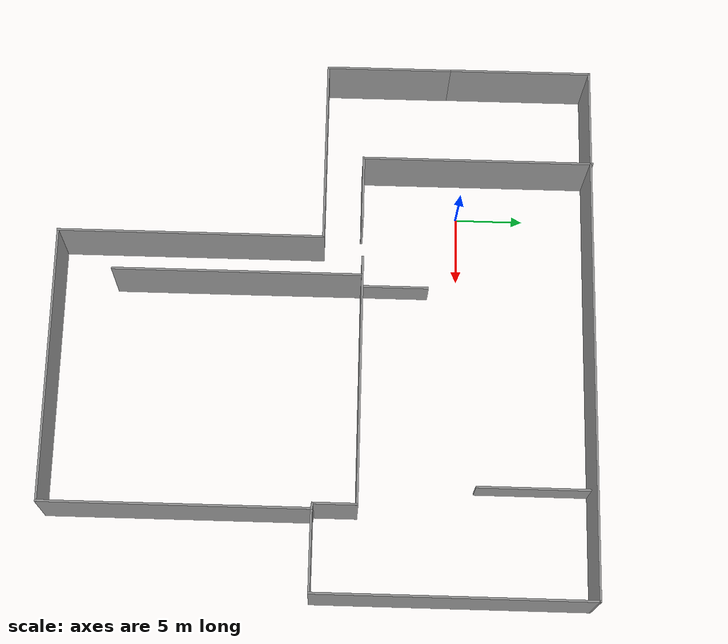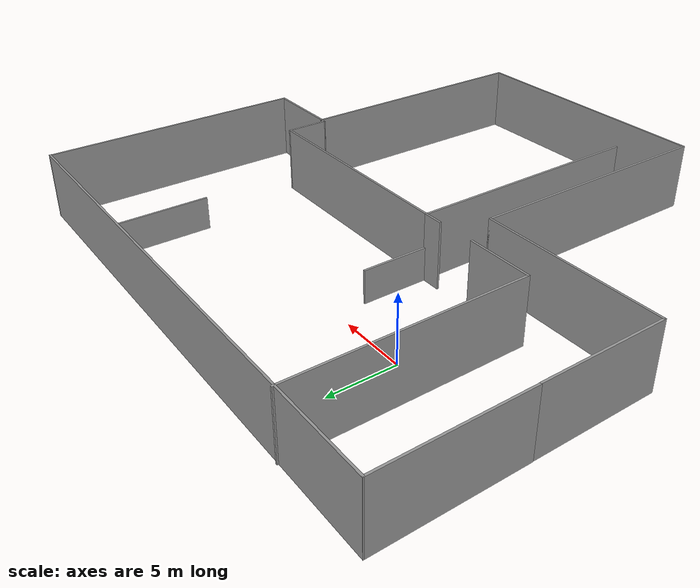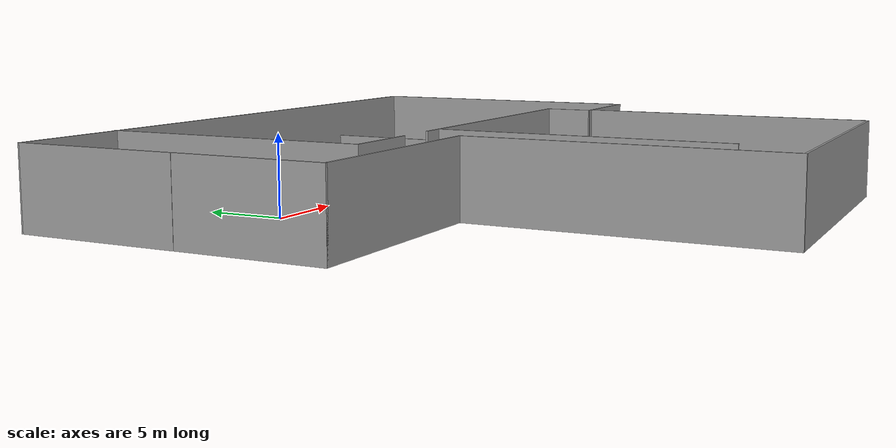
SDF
<?xml version='1.0'?>
<sdf version='1.7'>
  <model name='large_room_demo'>
    <pose>9.636 -9.831 0 0 -0 0</pose>
    <link name='Wall_1'>
      <collision name='Wall_1_Collision'>
        <geometry>
          <box>
            <size>9.25 0.15 5</size>
          </box>
        </geometry>
        <pose>0 0 2.5 0 -0 0</pose>
      </collision>
      <visual name='Wall_1_Visual'>
        <pose>0 0 2.5 0 -0 0</pose>
        <geometry>
          <box>
            <size>9.25 0.15 5</size>
          </box>
        </geometry>
        <material>
          <script>
            <uri>file://media/materials/scripts/gazebo.material</uri>
            <name>Gazebo/Grey</name>
          </script>
          <ambient>1 1 1 1</ambient>
        </material>
        <meta>
          <layer>0</layer>
        </meta>
      </visual>
      <pose>-19.766 4.391 0 0 -0 -1.5708</pose>
    </link>
    <link name='Wall_11'>
      <collision name='Wall_11_Collision'>
        <geometry>
          <box>
            <size>17 0.15 5</size>
          </box>
        </geometry>
        <pose>0 0 2.5 0 -0 0</pose>
      </collision>
      <visual name='Wall_11_Visual'>
        <pose>0 0 2.5 0 -0 0</pose>
        <geometry>
          <box>
            <size>17 0.15 5</size>
          </box>
        </geometry>
        <material>
          <script>
            <uri>file://media/materials/scripts/gazebo.material</uri>
            <name>Gazebo/Grey</name>
          </script>
          <ambient>1 1 1 1</ambient>
        </material>
        <meta>
          <layer>0</layer>
        </meta>
      </visual>
      <pose>-12.466 11.084 0 0 -0 -1.5708</pose>
    </link>
    <link name='Wall_12'>
      <collision name='Wall_12_Collision'>
        <geometry>
          <box>
            <size>5 0.15 5</size>
          </box>
        </geometry>
        <pose>0 0 2.5 0 -0 0</pose>
      </collision>
      <visual name='Wall_12_Visual'>
        <pose>0 0 2.5 0 -0 0</pose>
        <geometry>
          <box>
            <size>5 0.15 5</size>
          </box>
        </geometry>
        <material>
          <script>
            <uri>file://media/materials/scripts/gazebo.material</uri>
            <name>Gazebo/Grey</name>
          </script>
          <ambient>1 1 1 1</ambient>
        </material>
        <meta>
          <layer>0</layer>
        </meta>
      </visual>
      <pose>-10.041 2.659 0 0 -0 0</pose>
    </link>
    <link name='Wall_15'>
      <collision name='Wall_15_Collision'>
        <geometry>
          <box>
            <size>1.5 0.15 5</size>
          </box>
        </geometry>
        <pose>0 0 2.5 0 -0 0</pose>
      </collision>
      <visual name='Wall_15_Visual'>
        <pose>0 0 2.5 0 -0 0</pose>
        <geometry>
          <box>
            <size>1.5 0.15 5</size>
          </box>
        </geometry>
        <material>
          <script>
            <uri>file://media/materials/scripts/gazebo.material</uri>
            <name>Gazebo/Grey</name>
          </script>
          <ambient>1 1 1 1</ambient>
        </material>
        <meta>
          <layer>0</layer>
        </meta>
      </visual>
      <pose>-3.97 2.751 0 0 -0 0</pose>
    </link>
    <link name='Wall_16'>
      <collision name='Wall_16_Collision'>
        <geometry>
          <box>
            <size>18.2497 0.15 5</size>
          </box>
        </geometry>
        <pose>0 0 2.5 0 -0 0</pose>
      </collision>
      <visual name='Wall_16_Visual'>
        <pose>0 0 2.5 0 -0 0</pose>
        <geometry>
          <box>
            <size>18.2497 0.15 5</size>
          </box>
        </geometry>
        <material>
          <script>
            <uri>file://media/materials/scripts/gazebo.material</uri>
            <name>Gazebo/Grey</name>
          </script>
          <ambient>1 1 1 1</ambient>
        </material>
        <meta>
          <layer>0</layer>
        </meta>
      </visual>
      <pose>-3.295 -6.299 0 0 -0 -1.5708</pose>
    </link>
    <link name='Wall_18'>
      <collision name='Wall_18_Collision'>
        <geometry>
          <box>
            <size>17 0.15 5</size>
          </box>
        </geometry>
        <pose>0 0 2.5 0 -0 0</pose>
      </collision>
      <visual name='Wall_18_Visual'>
        <pose>0 0 2.5 0 -0 0</pose>
        <geometry>
          <box>
            <size>17 0.15 5</size>
          </box>
        </geometry>
        <material>
          <script>
            <uri>file://media/materials/scripts/gazebo.material</uri>
            <name>Gazebo/Grey</name>
          </script>
          <ambient>1 1 1 1</ambient>
        </material>
        <meta>
          <layer>0</layer>
        </meta>
      </visual>
      <pose>5.13 2.751 0 0 -0 0</pose>
    </link>
    <link name='Wall_19'>
      <collision name='Wall_19_Collision'>
        <geometry>
          <box>
            <size>3.25 0.15 5</size>
          </box>
        </geometry>
        <pose>0 0 2.5 0 -0 0</pose>
      </collision>
      <visual name='Wall_19_Visual'>
        <pose>0 0 2.5 0 -0 0</pose>
        <geometry>
          <box>
            <size>3.25 0.15 5</size>
          </box>
        </geometry>
        <material>
          <script>
            <uri>file://media/materials/scripts/gazebo.material</uri>
            <name>Gazebo/Grey</name>
          </script>
          <ambient>1 1 1 1</ambient>
        </material>
        <meta>
          <layer>0</layer>
        </meta>
      </visual>
      <pose>13.555 1.201 0 0 -0 -1.5708</pose>
    </link>
    <link name='Wall_2'>
      <collision name='Wall_2_Collision'>
        <geometry>
          <box>
            <size>13.75 0.15 5</size>
          </box>
        </geometry>
        <pose>0 0 2.5 0 -0 0</pose>
      </collision>
      <visual name='Wall_2_Visual'>
        <pose>0 0 2.5 0 -0 0</pose>
        <geometry>
          <box>
            <size>13.75 0.15 5</size>
          </box>
        </geometry>
        <material>
          <script>
            <uri>file://media/materials/scripts/gazebo.material</uri>
            <name>Gazebo/Grey</name>
          </script>
          <ambient>1 1 1 1</ambient>
        </material>
        <meta>
          <layer>0</layer>
        </meta>
      </visual>
      <pose>-12.966 -0.159 0 0 -0 0</pose>
    </link>
    <link name='Wall_20'>
      <collision name='Wall_20_Collision'>
        <geometry>
          <box>
            <size>0.533873 0.15 5</size>
          </box>
        </geometry>
        <pose>0 0 2.5 0 -0 0</pose>
      </collision>
      <visual name='Wall_20_Visual'>
        <pose>0 0 2.5 0 -0 0</pose>
        <geometry>
          <box>
            <size>0.533873 0.15 5</size>
          </box>
        </geometry>
        <material>
          <script>
            <uri>file://media/materials/scripts/gazebo.material</uri>
            <name>Gazebo/Grey</name>
          </script>
          <ambient>1 1 1 1</ambient>
        </material>
        <meta>
          <layer>0</layer>
        </meta>
      </visual>
      <pose>13.7445 -0.379 0 0 -0 -0.157008</pose>
    </link>
    <link name='Wall_22'>
      <collision name='Wall_22_Collision'>
        <geometry>
          <box>
            <size>8.25 0.15 2.5</size>
          </box>
        </geometry>
        <pose>0 0 1.25 0 -0 0</pose>
      </collision>
      <visual name='Wall_22_Visual'>
        <pose>0 0 1.25 0 -0 0</pose>
        <geometry>
          <box>
            <size>8.25 0.15 2.5</size>
          </box>
        </geometry>
        <material>
          <script>
            <uri>file://media/materials/scripts/gazebo.material</uri>
            <name>Gazebo/Grey</name>
          </script>
          <ambient>1 1 1 1</ambient>
        </material>
        <meta>
          <layer>0</layer>
        </meta>
      </visual>
      <pose>11.5445 15.3019 0 0 -0 -1.5708</pose>
    </link>
    <link name='Wall_24'>
      <collision name='Wall_24_Collision'>
        <geometry>
          <box>
            <size>5 0.15 2.5</size>
          </box>
        </geometry>
        <pose>0 0 1.25 0 -0 0</pose>
      </collision>
      <visual name='Wall_24_Visual'>
        <pose>0 0 1.25 0 -0 0</pose>
        <geometry>
          <box>
            <size>5 0.15 2.5</size>
          </box>
        </geometry>
        <material>
          <script>
            <uri>file://media/materials/scripts/gazebo.material</uri>
            <name>Gazebo/Grey</name>
          </script>
          <ambient>1 1 1 1</ambient>
        </material>
        <meta>
          <layer>0</layer>
        </meta>
      </visual>
      <pose>-3.295 5.176 0 0 -0 1.5708</pose>
    </link>
    <link name='Wall_3'>
      <collision name='Wall_3_Collision'>
        <geometry>
          <box>
            <size>19.5 0.15 5</size>
          </box>
        </geometry>
        <pose>0 0 2.5 0 -0 0</pose>
      </collision>
      <visual name='Wall_3_Visual'>
        <pose>0 0 2.5 0 -0 0</pose>
        <geometry>
          <box>
            <size>19.5 0.15 5</size>
          </box>
        </geometry>
        <material>
          <script>
            <uri>file://media/materials/scripts/gazebo.material</uri>
            <name>Gazebo/Grey</name>
          </script>
          <ambient>1 1 1 1</ambient>
        </material>
        <meta>
          <layer>0</layer>
        </meta>
      </visual>
      <pose>-6.166 -9.834 0 0 -0 -1.5708</pose>
    </link>
    <link name='Wall_4'>
      <collision name='Wall_4_Collision'>
        <geometry>
          <box>
            <size>20.25 0.15 5</size>
          </box>
        </geometry>
        <pose>0 0 2.5 0 -0 0</pose>
      </collision>
      <visual name='Wall_4_Visual'>
        <pose>0 0 2.5 0 -0 0</pose>
        <geometry>
          <box>
            <size>20.25 0.15 5</size>
          </box>
        </geometry>
        <material>
          <script>
            <uri>file://media/materials/scripts/gazebo.material</uri>
            <name>Gazebo/Grey</name>
          </script>
          <ambient>1 1 1 1</ambient>
        </material>
        <meta>
          <layer>0</layer>
        </meta>
      </visual>
      <pose>3.884 -19.509 0 0 -0 0</pose>
    </link>
    <link name='Wall_5'>
      <collision name='Wall_5_Collision'>
        <geometry>
          <box>
            <size>19.25 0.15 5</size>
          </box>
        </geometry>
        <pose>0 0 2.5 0 -0 0</pose>
      </collision>
      <visual name='Wall_5_Visual'>
        <pose>0 0 2.5 0 -0 0</pose>
        <geometry>
          <box>
            <size>19.25 0.15 5</size>
          </box>
        </geometry>
        <material>
          <script>
            <uri>file://media/materials/scripts/gazebo.material</uri>
            <name>Gazebo/Grey</name>
          </script>
          <ambient>1 1 1 1</ambient>
        </material>
        <meta>
          <layer>0</layer>
        </meta>
      </visual>
      <pose>13.934 -9.959 0 0 -0 1.5708</pose>
    </link>
    <link name='Wall_6'>
      <collision name='Wall_6_Collision'>
        <geometry>
          <box>
            <size>6 0.15 5</size>
          </box>
        </geometry>
        <pose>0 0 2.5 0 -0 0</pose>
      </collision>
      <visual name='Wall_6_Visual'>
        <pose>0 0 2.5 0 -0 0</pose>
        <geometry>
          <box>
            <size>6 0.15 5</size>
          </box>
        </geometry>
        <material>
          <script>
            <uri>file://media/materials/scripts/gazebo.material</uri>
            <name>Gazebo/Grey</name>
          </script>
          <ambient>1 1 1 1</ambient>
        </material>
        <meta>
          <layer>0</layer>
        </meta>
      </visual>
      <pose>16.859 -0.409 0 0 -0 0</pose>
    </link>
    <link name='Wall_7'>
      <collision name='Wall_7_Collision'>
        <geometry>
          <box>
            <size>20 0.15 5</size>
          </box>
        </geometry>
        <pose>0 0 2.5 0 -0 0</pose>
      </collision>
      <visual name='Wall_7_Visual'>
        <pose>0 0 2.5 0 -0 0</pose>
        <geometry>
          <box>
            <size>20 0.15 5</size>
          </box>
        </geometry>
        <material>
          <script>
            <uri>file://media/materials/scripts/gazebo.material</uri>
            <name>Gazebo/Grey</name>
          </script>
          <ambient>1 1 1 1</ambient>
        </material>
        <meta>
          <layer>0</layer>
        </meta>
      </visual>
      <pose>19.784 9.516 0 0 -0 1.5708</pose>
    </link>
    <link name='Wall_8'>
      <collision name='Wall_8_Collision'>
        <geometry>
          <box>
            <size>39.718 0.15 5</size>
          </box>
        </geometry>
        <pose>0 0 2.5 0 -0 0</pose>
      </collision>
      <visual name='Wall_8_Visual'>
        <pose>0 0 2.5 0 -0 0</pose>
        <geometry>
          <box>
            <size>39.718 0.15 5</size>
          </box>
        </geometry>
        <material>
          <script>
            <uri>file://media/materials/scripts/gazebo.material</uri>
            <name>Gazebo/Grey</name>
          </script>
          <ambient>1 1 1 1</ambient>
        </material>
        <meta>
          <layer>0</layer>
        </meta>
      </visual>
      <pose>0 19.4235 0 0 -0 -3.14071</pose>
    </link>
    <link name='Wall_9'>
      <collision name='Wall_9_Collision'>
        <geometry>
          <box>
            <size>10.5 0.15 5</size>
          </box>
        </geometry>
        <pose>0 0 2.5 0 -0 0</pose>
      </collision>
      <visual name='Wall_9_Visual'>
        <pose>0 0 2.5 0 -0 0</pose>
        <geometry>
          <box>
            <size>10.5 0.15 5</size>
          </box>
        </geometry>
        <material>
          <script>
            <uri>file://media/materials/scripts/gazebo.material</uri>
            <name>Gazebo/Grey</name>
          </script>
          <ambient>1 1 1 1</ambient>
        </material>
        <meta>
          <layer>0</layer>
        </meta>
      </visual>
      <pose>-19.784 14.231 0 0 -0 -1.5708</pose>
    </link>
    <static>1</static>
  </model>
</sdf>
